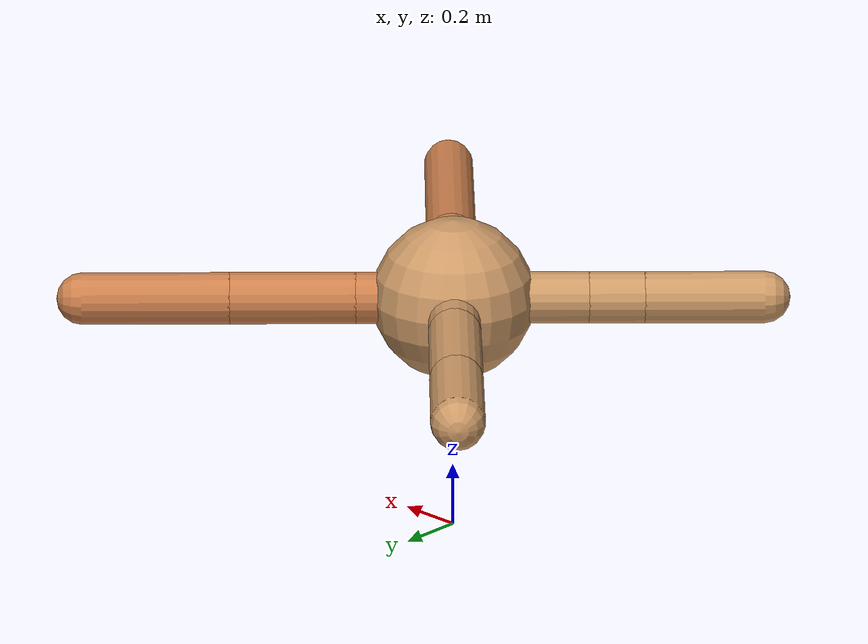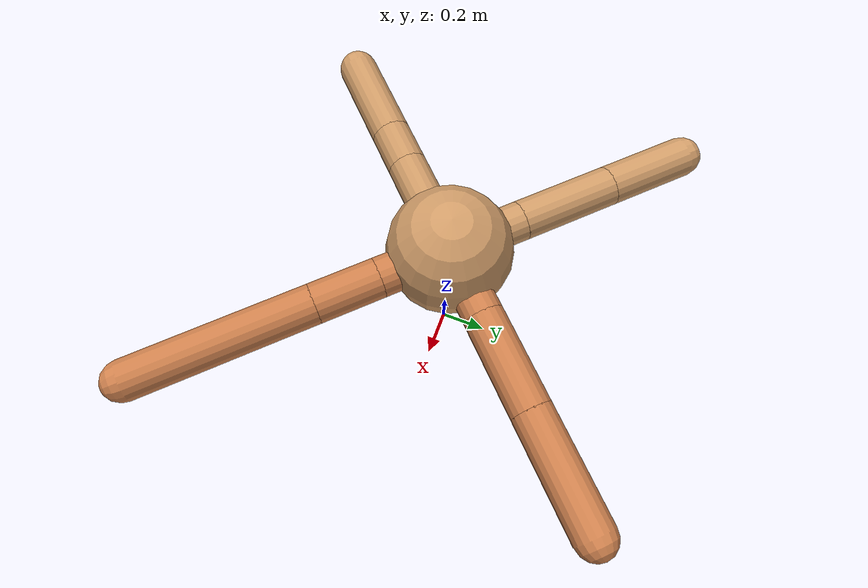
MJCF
<mujoco model="ant">
  <compiler angle="degree" coordinate="local" inertiafromgeom="true" />
  <option integrator="RK4" timestep="0.01" />
  <custom>
    <numeric data="0.0 0.0 0.55 1.0 0.0 0.0 0.0 0.0 1.0 0.0 -1.0 0.0 -1.0 0.0 1.0" name="init_qpos" />
  </custom>
  <default>
    <joint armature="1" damping="1" limited="true" />
    <geom conaffinity="0" condim="3" density="5.0" friction="1.5 0.1 0.1" margin="0.01" rgba="0.8 0.6 0.4 1" />
  </default>
  <worldbody>
    <body name="torso" pos="0 0 0.75">
      <geom name="torso_geom" pos="0 0 0" size="0.25" type="sphere" />

      <body name="front_left_leg" pos="0 0 0">
        <geom fromto="0.0 0.0 0.0 0.21137727904867487 0.21137727904867487 0.0" name="aux_1_geom" size="0.08" type="capsule" rgba=".8 .5 .3 1" />
        <body name="aux_1" pos="0.21137727904867487 0.21137727904867487 0.0">
          <joint axis="0 0 1" name="hip_1" pos="0.0 0.0 0.0" range="-40 40" type="hinge" />
          <geom fromto="0.0 0.0 0.0 0.27260041603232693 0.27260041603232693 0.0" name="left_leg_geom" size="0.08" type="capsule" rgba=".8 .5 .3 1" />
          <body pos="0.27260041603232693 0.27260041603232693 0.0" name="front_left_foot">
            <joint axis="-1 1 0" name="ankle_1" pos="0.0 0.0 0.0" range="30 100" type="hinge" />
            <geom fromto="0.0 0.0 0.0 0.3189352074322492 0.3189352074322492 0.0" name="left_ankle_geom" size="0.08" type="capsule" rgba=".8 .5 .3 1" />
          </body>
        </body>
      </body>
      <body name="front_right_leg" pos="0 0 0">
        <geom fromto="0.0 0.0 0.0 -0.21844860281692174 0.21844860281692174 0.0" name="aux_2_geom" size="0.08" type="capsule" />
        <body name="aux_2" pos="-0.21844860281692174 0.21844860281692174 0.0">
          <joint axis="0 0 1" name="hip_2" pos="0.0 0.0 0.0" range="-40 40" type="hinge" />
          <geom fromto="0.0 0.0 0.0 -0.27827129261563427 0.27827129261563427 0.0" name="right_leg_geom" size="0.08" type="capsule" />
          <body pos="-0.27827129261563427 0.27827129261563427 0.0" name="front_right_foot">
            <joint axis="1 1 0" name="ankle_2" pos="0.0 0.0 0.0" range="-100 -30" type="hinge" />
            <geom fromto="0.0 0.0 0.0 -0.2425790771036941 0.2425790771036941 0.0" name="right_ankle_geom" size="0.08" type="capsule" />
          </body>
        </body>
      </body>
      <body name="left_back_leg" pos="0 0 0">
        <geom fromto="0.0 0.0 0.0 -0.2928431285744881 -0.2928431285744881 0.0" name="aux_3_geom" size="0.08" type="capsule" />
        <body name="aux_3" pos="-0.2928431285744881 -0.2928431285744881 0.0">
          <joint axis="0 0 1" name="hip_3" pos="0.0 0.0 0.0" range="-40 40" type="hinge" />
          <geom fromto="0.0 0.0 0.0 -0.12067332162631783 -0.12067332162631783 0.0" name="back_leg_geom" size="0.08" type="capsule" />
          <body pos="-0.12067332162631783 -0.12067332162631783 0.0" name="left_back_foot">
            <joint axis="-1 1 0" name="ankle_3" pos="0.0 0.0 0.0" range="-100 -30" type="hinge" />
            <geom fromto="0.0 0.0 0.0 -0.2602279693231006 -0.2602279693231006 0.0" name="third_ankle_geom" size="0.08" type="capsule" />
          </body>
        </body>
      </body>
      <body name="right_back_leg" pos="0 0 0">
        <geom fromto="0.0 0.0 0.0 0.2095817091643214 -0.2095817091643214 0.0" name="aux_4_geom" size="0.08" type="capsule" rgba=".8 .5 .3 1" />
        <body name="aux_4" pos="0.2095817091643214 -0.2095817091643214 0.0">
          <joint axis="0 0 1" name="hip_4" pos="0.0 0.0 0.0" range="-40 40" type="hinge" />
          <geom fromto="0.0 0.0 0.0 0.18481564322397726 -0.18481564322397726 0.0" name="rightback_leg_geom" size="0.08" type="capsule" rgba=".8 .5 .3 1" />
          <body pos="0.18481564322397726 -0.18481564322397726 0.0" name="right_back_foot">
            <joint axis="1 1 0" name="ankle_4" pos="0.0 0.0 0.0" range="30 100" type="hinge" />
            <geom fromto="0.0 0.0 0.0 0.5133035365123437 -0.5133035365123437 0.0" name="fourth_ankle_geom" size="0.08" type="capsule" rgba=".8 .5 .3 1" />
          </body>
        </body>
      </body>
    </body>
  </worldbody>
  <actuator>
    <motor ctrllimited="true" ctrlrange="-1.0 1.0" joint="hip_4" gear="150" />
    <motor ctrllimited="true" ctrlrange="-1.0 1.0" joint="ankle_4" gear="150" />
    <motor ctrllimited="true" ctrlrange="-1.0 1.0" joint="hip_1" gear="150" />
    <motor ctrllimited="true" ctrlrange="-1.0 1.0" joint="ankle_1" gear="150" />
    <motor ctrllimited="true" ctrlrange="-1.0 1.0" joint="hip_2" gear="150" />
    <motor ctrllimited="true" ctrlrange="-1.0 1.0" joint="ankle_2" gear="150" />
    <motor ctrllimited="true" ctrlrange="-1.0 1.0" joint="hip_3" gear="150" />
    <motor ctrllimited="true" ctrlrange="-1.0 1.0" joint="ankle_3" gear="150" />
  </actuator>
</mujoco>
